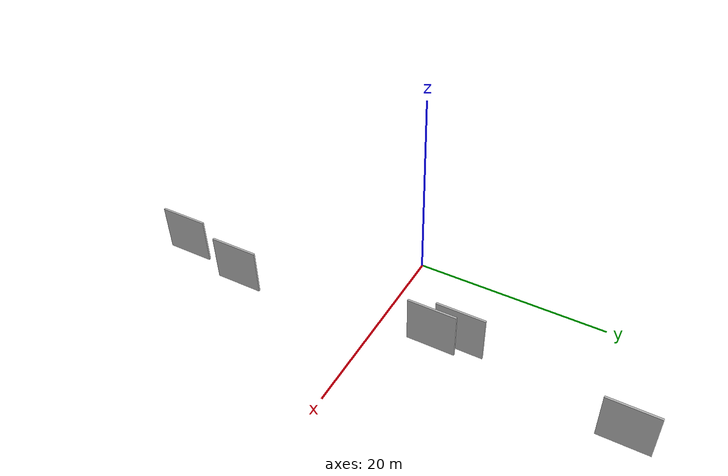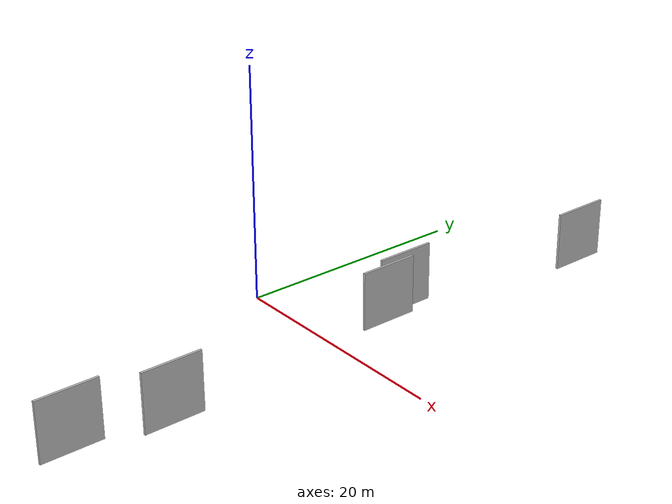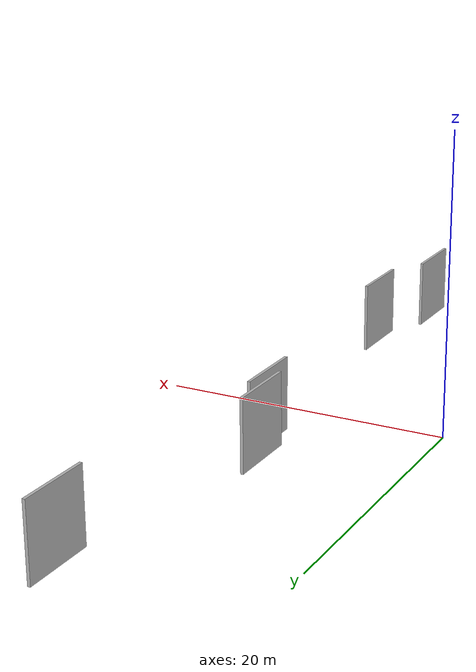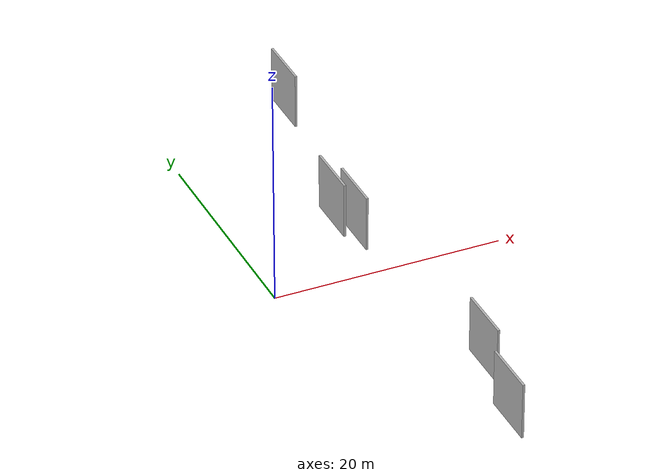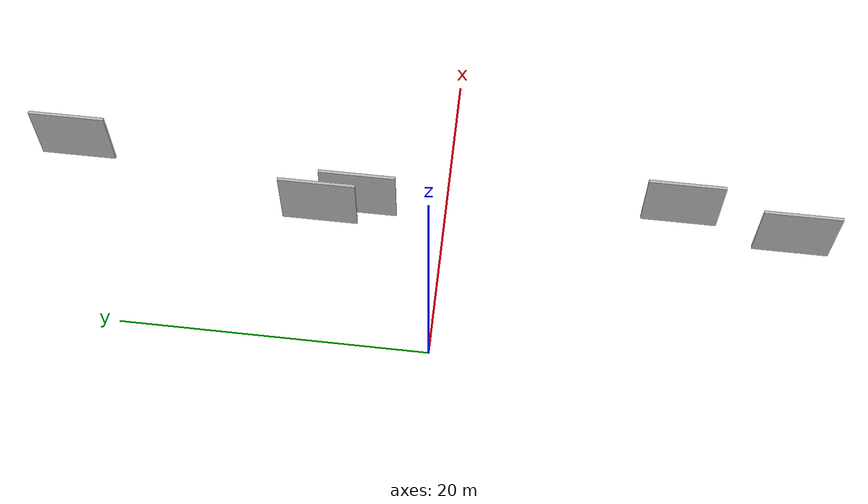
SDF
<sdf version="1.6">
 <world name="default">
  <scene>
   <sky><clouds><speed>12</speed></clouds></sky>
   <ambient>0.4 0.4 0.4 1</ambient>
   <background>0.7 0.7 0.7 1</background>
   <shadows>1</shadows>
  </scene>
  <gravity>0 0 -9.8066</gravity>
  <magnetic_field>6e-06 2.3e-05 -4.2e-05</magnetic_field>
  <physics default="0" name="default_physics" type="ode">
   <ode>
    <solver>
     <type>quick</type>
     <iters>10</iters>
     <sor>1.0</sor>
     <use_dynamic_moi_rescaling>0</use_dynamic_moi_rescaling>
    </solver>
    <constraints>
     <cfm>0</cfm>
     <erp>0.2</erp>
     <contact_max_correcting_vel>100</contact_max_correcting_vel>
     <contact_surface_layer>0.001</contact_surface_layer>
    </constraints>
   </ode>
   <max_step_size>0.004</max_step_size>
   <real_time_factor>1</real_time_factor>
   <real_time_update_rate>250</real_time_update_rate>
  </physics>
  <light name="sun" type="directional">
   <pose>0 0 10 0 0 0</pose>
   <diffuse>0.8 0.8 0.8 1</diffuse>
   <specular>0.2 0.2 0.2 1</specular>
   <attenuation>
    <range>1000</range>
    <constant>0.9</constant>
    <linear>0.01</linear>
    <quadratic>0.001</quadratic>
   </attenuation>
   <direction>-0.5 0.1 -0.9</direction>
  </light>
  <model name="grey_wall_1">
   <static>1</static>
   <pose>8.8045 8.2633 0.0 0.000000 0.000000 1.570796</pose>
   <link name="link">
    <pose>0 0 2.50 0 0 0</pose>
    <collision name="collision"><geometry><box><size>5.00 0.2 5.00</size></box></geometry></collision>
    <visual name="visual">
     <cast_shadows>0</cast_shadows>
     <geometry><box><size>5.00 0.2 5.00</size></box></geometry>
     <material>
      <script>
       <uri>model://HANNAS_wall/materials/scripts</uri>
       <uri>model://HANNAS_wall/materials/textures</uri>
       <name>vrc/HANNAS_wall</name>
      </script>
     </material>
    </visual>
   </link>
  </model>
  <model name="grey_wall_2">
   <static>1</static>
   <pose>9.8498 -22.7497 0.0 0.000000 0.000000 1.570796</pose>
   <link name="link">
    <pose>0 0 2.50 0 0 0</pose>
    <collision name="collision"><geometry><box><size>5.00 0.2 5.00</size></box></geometry></collision>
    <visual name="visual">
     <cast_shadows>0</cast_shadows>
     <geometry><box><size>5.00 0.2 5.00</size></box></geometry>
     <material>
      <script>
       <uri>model://HANNAS_wall/materials/scripts</uri>
       <uri>model://HANNAS_wall/materials/textures</uri>
       <name>vrc/HANNAS_wall</name>
      </script>
     </material>
    </visual>
   </link>
  </model>
  <model name="grey_wall_3">
   <static>1</static>
   <pose>11.9225 25.2146 0.0 0.000000 0.000000 1.570796</pose>
   <link name="link">
    <pose>0 0 2.50 0 0 0</pose>
    <collision name="collision"><geometry><box><size>5.00 0.2 5.00</size></box></geometry></collision>
    <visual name="visual">
     <cast_shadows>0</cast_shadows>
     <geometry><box><size>5.00 0.2 5.00</size></box></geometry>
     <material>
      <script>
       <uri>model://HANNAS_wall/materials/scripts</uri>
       <uri>model://HANNAS_wall/materials/textures</uri>
       <name>vrc/HANNAS_wall</name>
      </script>
     </material>
    </visual>
   </link>
  </model>
  <model name="grey_wall_4">
   <static>1</static>
   <pose>9.6693 5.7571 0.0 0.000000 0.000000 1.570796</pose>
   <link name="link">
    <pose>0 0 2.50 0 0 0</pose>
    <collision name="collision"><geometry><box><size>5.00 0.2 5.00</size></box></geometry></collision>
    <visual name="visual">
     <cast_shadows>0</cast_shadows>
     <geometry><box><size>5.00 0.2 5.00</size></box></geometry>
     <material>
      <script>
       <uri>model://HANNAS_wall/materials/scripts</uri>
       <uri>model://HANNAS_wall/materials/textures</uri>
       <name>vrc/HANNAS_wall</name>
      </script>
     </material>
    </visual>
   </link>
  </model>
  <model name="grey_wall_5">
   <static>1</static>
   <pose>11.2808 -15.3853 0.0 0.000000 0.000000 1.570796</pose>
   <link name="link">
    <pose>0 0 2.50 0 0 0</pose>
    <collision name="collision"><geometry><box><size>5.00 0.2 5.00</size></box></geometry></collision>
    <visual name="visual">
     <cast_shadows>0</cast_shadows>
     <geometry><box><size>5.00 0.2 5.00</size></box></geometry>
     <material>
      <script>
       <uri>model://HANNAS_wall/materials/scripts</uri>
       <uri>model://HANNAS_wall/materials/textures</uri>
       <name>vrc/HANNAS_wall</name>
      </script>
     </material>
    </visual>
   </link>
  </model>
 </world>
</sdf>
